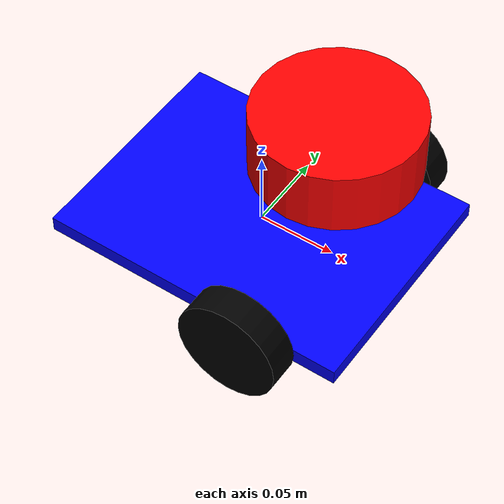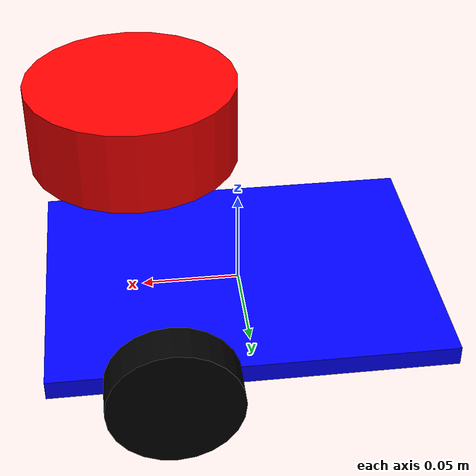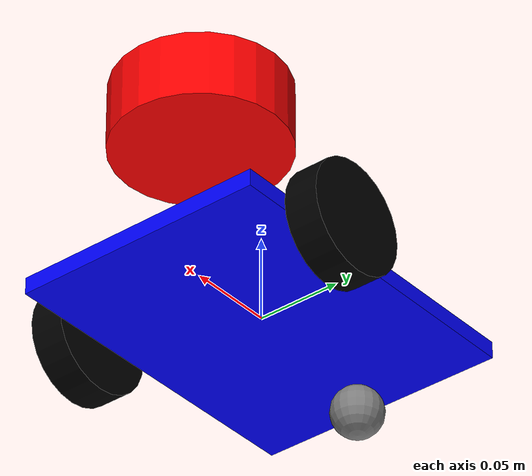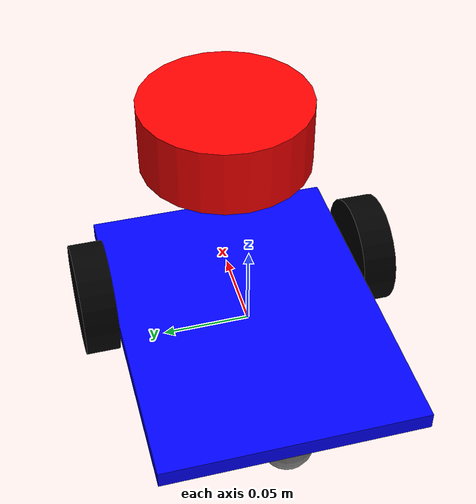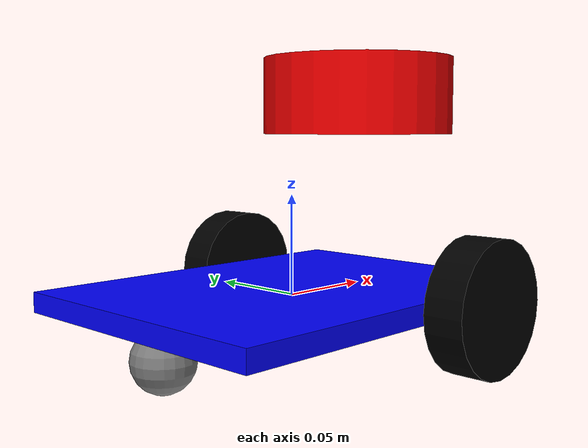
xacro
<?xml version="1.0"?>
<robot xmlns:xacro="http://www.ros.org/wiki/xacro" name="GigaVacuumMobil">

    <!-- ============ ADD THIS ARGUMENT AT THE TOP ============ -->
    <xacro:arg name="use_sim" default="false"/>
    <xacro:arg name="controllers_file" default=""/>

    <!-- Robot constants - UPDATE THESE TO MATCH YOUR ACTUAL ROBOT -->
    <xacro:property name="wheel_radius" value="0.033" />
    <xacro:property name="wheel_separation" value="0.17" />
    <xacro:property name="wheel_width" value="0.02" />
    <xacro:property name="wheel_offset_x" value="0.04" />
    <xacro:property name="base_length" value="0.20" />
    <xacro:property name="base_width" value="0.15" />
    <xacro:property name="base_height" value="0.01" />
    <xacro:property name="lidar_offset_x" value="0.05" />
    <xacro:property name="lidar_offset_z" value="0.10" />

    <!-- Base Link -->
    <link name="base_link">
        <visual>
            <geometry>
                <box size="${base_length} ${base_width} ${base_height}" />
            </geometry>
            <origin xyz="0 0 0" rpy="0 0 0" />
            <material name="blue">
                <color rgba="0.0 0.0 1.0 1.0" />
            </material>
        </visual>
        <collision>
            <geometry>
                <box size="${base_length} ${base_width} ${base_height}" />
            </geometry>
        </collision>
        <inertial>
            <mass value="1.0"/>
            <inertia ixx="0.001" ixy="0.0" ixz="0.0" iyy="0.001" iyz="0.0" izz="0.001"/>
        </inertial>
    </link>

    <!-- Right Wheel -->
    <link name="right_wheel_link">
        <visual>
            <geometry>
                <cylinder radius="${wheel_radius}" length="${wheel_width}" />
            </geometry>
            <origin xyz="0 0 0" rpy="1.5707 0 0" />
            <material name="black">
                <color rgba="0.0 0.0 0.0 1.0" />
            </material>
        </visual>
        <collision>
            <geometry>
                <cylinder radius="${wheel_radius}" length="${wheel_width}" />
            </geometry>
            <origin xyz="0 0 0" rpy="1.5707 0 0" />
        </collision>
        <inertial>
            <mass value="0.1"/>
            <origin xyz="0 0 0" rpy="1.5707 0 0" />
            <inertia ixx="0.00005" ixy="0.0" ixz="0.0" iyy="0.00005" iyz="0.0" izz="0.00005"/>
        </inertial>
    </link>

    <joint name="right_wheel_joint" type="continuous">
        <parent link="base_link" />
        <child link="right_wheel_link" />
        <origin xyz="${wheel_offset_x} ${-wheel_separation/2} 0" rpy="0 0 0" />
        <axis xyz="0 1 0" />
    </joint>

    <!-- Left Wheel -->
    <link name="left_wheel_link">
        <visual>
            <geometry>
                <cylinder radius="${wheel_radius}" length="${wheel_width}" />
            </geometry>
            <origin xyz="0 0 0" rpy="1.5707 0 0" />
            <material name="black"/>
        </visual>
        <collision>
            <geometry>
                <cylinder radius="${wheel_radius}" length="${wheel_width}" />
            </geometry>
            <origin xyz="0 0 0" rpy="1.5707 0 0" />
        </collision>
        <inertial>
            <mass value="0.1"/>
            <origin xyz="0 0 0" rpy="1.5707 0 0" />
            <inertia ixx="0.00005" ixy="0.0" ixz="0.0" iyy="0.00005" iyz="0.0" izz="0.00005"/>
        </inertial>
    </link>

    <joint name="left_wheel_joint" type="continuous">
        <parent link="base_link" />
        <child link="left_wheel_link" />
        <origin xyz="${wheel_offset_x} ${wheel_separation/2} 0" rpy="0 0 0" />
        <axis xyz="0 1 0" />
    </joint>

    <!-- Caster Wheel (Pivot/Support Wheel) -->
    <xacro:property name="caster_radius" value="0.015" />
    <xacro:property name="caster_offset_x" value="${-base_length/2 + 0.02}" />

    <link name="caster_wheel_link">
        <visual>
            <geometry>
                <sphere radius="${caster_radius}" />
            </geometry>
            <material name="gray">
                <color rgba="0.5 0.5 0.5 1.0" />
            </material>
        </visual>
        <collision>
            <geometry>
                <sphere radius="${caster_radius}" />
            </geometry>
        </collision>
        <inertial>
            <mass value="0.05"/>
            <inertia ixx="0.00001" ixy="0.0" ixz="0.0" iyy="0.00001" iyz="0.0" izz="0.00001"/>
        </inertial>
    </link>

    <joint name="caster_wheel_joint" type="fixed">
        <parent link="base_link" />
        <child link="caster_wheel_link" />
        <origin xyz="${caster_offset_x} 0 ${-wheel_radius + caster_radius}" rpy="0 0 0" />
    </joint>

    <!-- Lidar Sensor (RPLIDAR C1) -->
    <link name="lidar_link">
        <visual>
            <geometry>
                <cylinder radius="0.05" length="0.04"/>
            </geometry>
            <material name="red">
                <color rgba="1.0 0.0 0.0 1.0" />
            </material>
        </visual>
        <collision>
            <geometry>
                <cylinder radius="0.05" length="0.04"/>
            </geometry>
        </collision>
        <inertial>
            <mass value="0.1"/>
            <inertia ixx="0.0001" ixy="0.0" ixz="0.0" iyy="0.0001" iyz="0.0" izz="0.0001"/>
        </inertial>
    </link>

    <joint name="lidar_joint" type="fixed">
        <parent link="base_link" />
        <child link="lidar_link" />
        <origin xyz="${lidar_offset_x} 0 ${lidar_offset_z}" rpy="0 0 0" />
    </joint>

    <!-- Gazebo Lidar Sensor Plugin -->
    <gazebo reference="lidar_link">
        <sensor name="lidar_sensor" type="gpu_lidar">
            <topic>scan</topic>
            <update_rate>10</update_rate>
            <gz_frame_id>lidar_link</gz_frame_id>
            <lidar>
                <scan>
                    <horizontal>
                        <samples>360</samples>
                        <resolution>1</resolution>
                        <min_angle>0.0</min_angle>
                        <max_angle>6.28</max_angle>
                    </horizontal>
                </scan>
                <range>
                    <min>0.12</min>
                    <max>12.0</max>
                    <resolution>0.01</resolution>
                </range>
                <noise>
                    <type>gaussian</type>
                    <mean>0.0</mean>
                    <stddev>0.01</stddev>
                </noise>
            </lidar>
            <always_on>1</always_on>
            <visualize>true</visualize>
        </sensor>
    </gazebo>

    <!-- |                      ROS2 Control Plugin                        | -->
    <ros2_control name="GigaVacuumMobil" type="system">
        <hardware>
            <!-- Use different plugin based on simulation mode -->
            <xacro:if value="$(arg use_sim)">
                <plugin>gz_ros2_control/GazeboSimSystem</plugin>
            </xacro:if>
            <xacro:unless value="$(arg use_sim)">
                <plugin>GigaVacuumMobil/DiffDriveHardware</plugin>
                <param name="device">/dev/ttyUSB0</param>
                <param name="baud_rate">57600</param>
                <param name="timeout_ms">100</param>
                <param name="enc_ticks_per_rev">2400</param>
            </xacro:unless>
        </hardware>

        <!-- Define the joints that this hardware interface controls -->
        <joint name="left_wheel_joint">
            <command_interface name="velocity"/>
            <state_interface name="position"/>
            <state_interface name="velocity"/>
        </joint>
        <joint name="right_wheel_joint">
            <command_interface name="velocity"/>
            <state_interface name="position"/>
            <state_interface name="velocity"/>
        </joint>
    </ros2_control>

    <!-- Gazebo ros2_control plugin -->
    <gazebo>
        <plugin filename="gz_ros2_control-system" name="gz_ros2_control::GazeboSimROS2ControlPlugin">
            <robot_param>robot_description</robot_param>
            <robot_param_node>/robot_state_publisher</robot_param_node>
            <parameters>$(arg controllers_file)</parameters>
        </plugin>
    </gazebo>

    <!-- Gazebo-specific material properties -->
    <gazebo reference="base_link">
        <material>Gazebo/Blue</material>
    </gazebo>

    <gazebo reference="left_wheel_link">
        <material>Gazebo/Black</material>
        <mu1>1.0</mu1>
        <mu2>1.0</mu2>
        <kp>1000000.0</kp>
        <kd>100.0</kd>
        <minDepth>0.001</minDepth>
        <maxVel>1.0</maxVel>
    </gazebo>

    <gazebo reference="right_wheel_link">
        <material>Gazebo/Black</material>
        <mu1>1.0</mu1>
        <mu2>1.0</mu2>
        <kp>1000000.0</kp>
        <kd>100.0</kd>
        <minDepth>0.001</minDepth>
        <maxVel>1.0</maxVel>
    </gazebo>

    <gazebo reference="caster_wheel_link">
        <material>Gazebo/Gray</material>
        <!-- Low friction for smooth pivoting -->
        <mu1>0.0</mu1>
        <mu2>0.0</mu2>
        <kp>1000000.0</kp>
        <kd>100.0</kd>
        <minDepth>0.001</minDepth>
        <maxVel>1.0</maxVel>
    </gazebo>

    <gazebo reference="lidar_link">
        <material>Gazebo/Red</material>
    </gazebo>

</robot>
